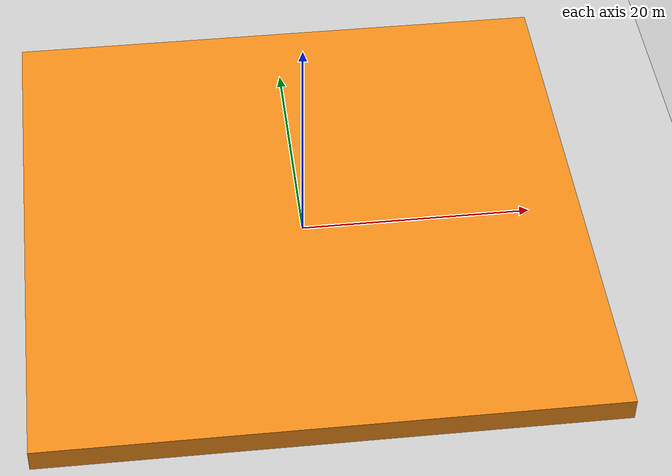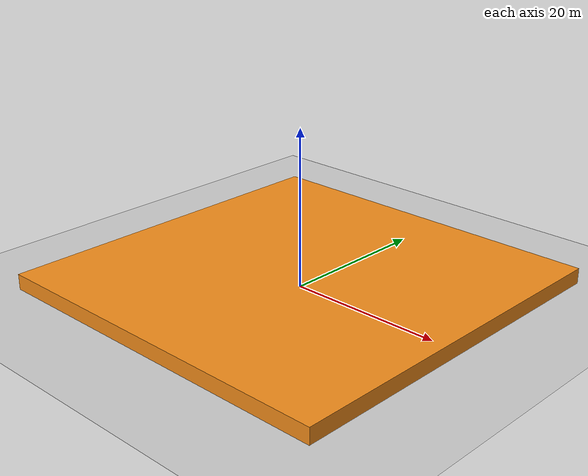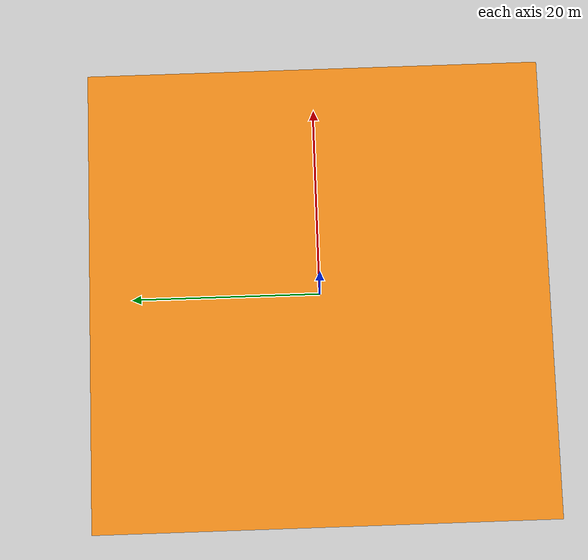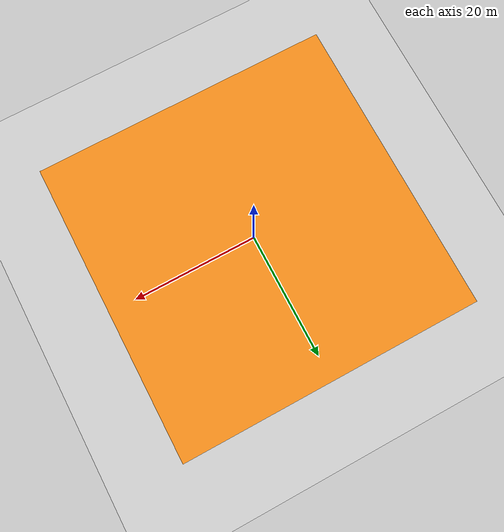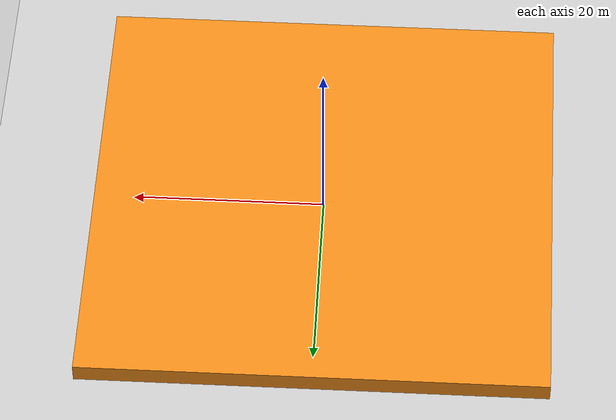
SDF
<?xml version="1.0" ?>
<sdf version="1.5">
  <world name="default">
    <include>
      <uri>model://sun</uri>
    </include>

    <include>
      <uri>model://ground_plane</uri>
    </include>

    <include>
      <uri>model://asphalt_plane</uri>
    </include>

    <model name="high_distance_sensor_test_platform">
      <static>true</static>
      <pose>0 0 0 0 0 0</pose>
      <link name="link">
        <collision name="top_deck_collision">
          <pose>0 0 1.98 0 0 0</pose>
          <geometry>
            <box>
              <size>48 48 0.04</size>
            </box>
          </geometry>
          <surface>
            <contact>
              <ode>
                <min_depth>0.001</min_depth>
                <max_vel>0</max_vel>
              </ode>
            </contact>
            <friction>
              <ode>
                <mu>1.0</mu>
                <mu2>1.0</mu2>
              </ode>
            </friction>
          </surface>
        </collision>

        <visual name="visual">
          <pose>0 0 1.0 0 0 0</pose>
          <geometry>
            <box>
              <size>48 48 2</size>
            </box>
          </geometry>
          <material>
            <script>
              <uri>file://media/materials/scripts/gazebo.material</uri>
              <name>Gazebo/Orange</name>
            </script>
            <ambient>0.8 0.45 0.16 1</ambient>
            <diffuse>0.8 0.45 0.16 1</diffuse>
          </material>
        </visual>
      </link>
    </model>

    <physics name="default_physics" default="0" type="ode">
      <gravity>0 0 -9.8066</gravity>
      <ode>
        <solver>
          <type>quick</type>
          <iters>10</iters>
          <sor>1.3</sor>
          <use_dynamic_moi_rescaling>0</use_dynamic_moi_rescaling>
        </solver>
        <constraints>
          <cfm>0</cfm>
          <erp>0.2</erp>
          <contact_max_correcting_vel>100</contact_max_correcting_vel>
          <contact_surface_layer>0.001</contact_surface_layer>
        </constraints>
      </ode>
      <max_step_size>0.004</max_step_size>
      <real_time_factor>1</real_time_factor>
      <real_time_update_rate>250</real_time_update_rate>
      <magnetic_field>6.0e-6 2.3e-5 -4.2e-5</magnetic_field>
    </physics>
  </world>
</sdf>
